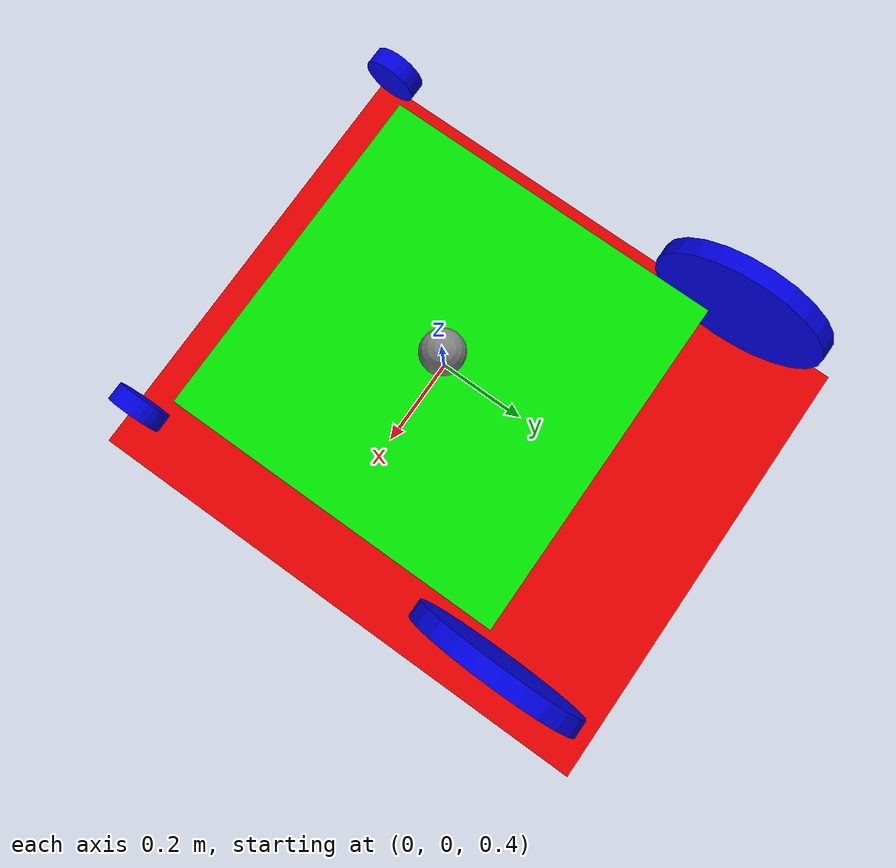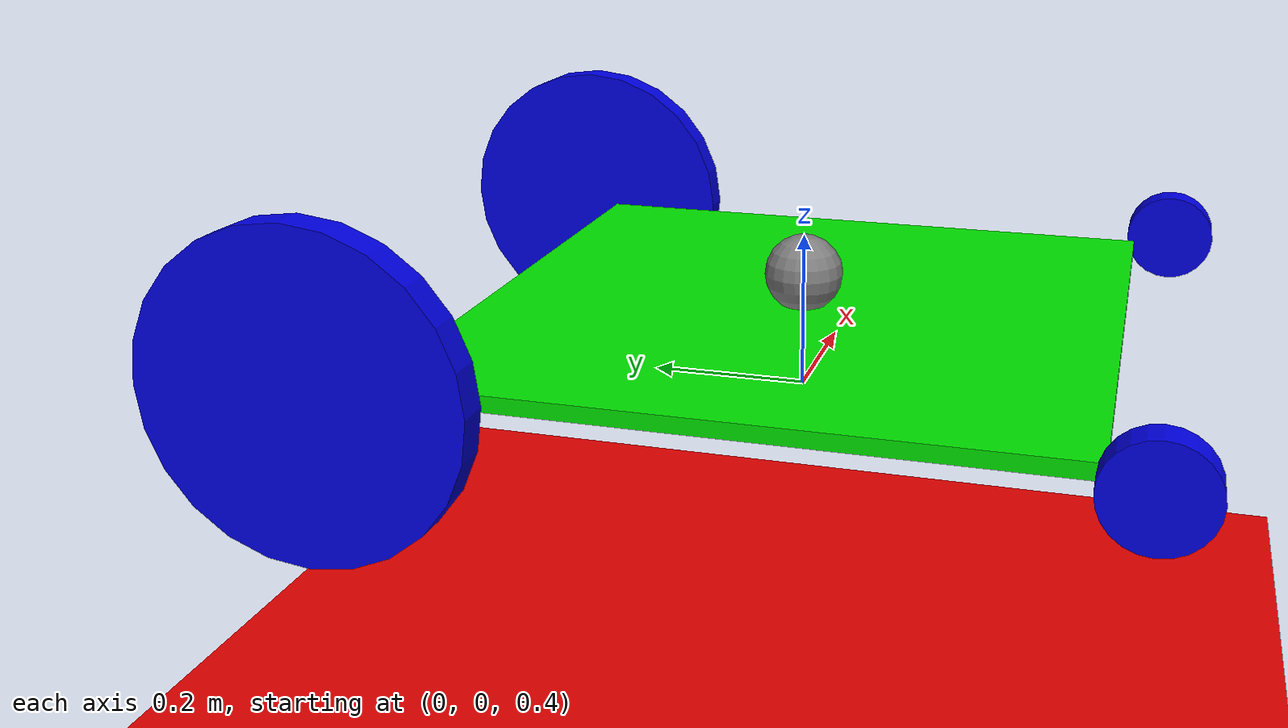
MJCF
<mujoco>
 	<worldbody>
		<light diffuse=".5 .5 .5" pos="0 0 3" dir="0 0 -1"/>
		<geom type="plane" size="2 2 0.1" rgba=".9 0 0 1"/>

		<body name = "main body" pos="0 0 0.5">
 			<joint type="free"/>
 			<geom type="box" size=".4 .4 .01" rgba="0 .9 0 1"/>
            <site name="marker" pos = "0 0 0.05" size="0.05" />
            <site name="robot_center" pos="0 0 0" size="0.01"/>

            <body name = "left front wheel" pos="0.45 .45 .01" euler='0 90 0'>
     			<joint name = "left front" type="hinge" axis = "0 0 -1"/>
     			<geom type="cylinder" size=".2 0.02" rgba="0 0 0.9 1" mass="1" friction="0.005 0.005 0.0001"/>
    		</body>

            <body name = "right front wheel" pos="-0.45 .45 .01" euler='0 90 0'>
     			<joint name = "right front" type="hinge" axis = "0 0 -1"/>
     			<geom type="cylinder" size=".2 0.02" rgba="0 0 0.9 1" mass="1" friction="0.005 0.005 0.0001"/>
    		</body>

            <body name = "left rear wheel" pos="0.45 -.45 .01" euler='0 90 0'>
     			<joint name = "left rear" type="hinge" axis = "-0 0 -1"/>
     			<geom type="cylinder" size=".06 0.02" rgba="0 0 0.9 1" mass="10" friction="0.005 0.005 0.0001"/>
    		</body>

            <body name = "right rear wheel" pos="-0.45 -.45 .01" euler='0 90 0'>
     			<joint name = "right rear" type="hinge" axis = "-0 0 -1"/>
     			<geom type="cylinder" size=".06 0.02" rgba="0 0 0.9 1" mass="10" friction="0.005 0.005 0.0001"/>
    		</body>

        </body>

 	</worldbody>
    <sensor>
		<framepos objtype="site" objname="marker"/>
        <velocimeter name="robot_velocity" site="robot_center"/>
	</sensor>
    <actuator>

        <velocity name="left front motor" joint="left front" kv="10"/>
        <velocity name="right front motor" joint="right front" kv="10"/>
        <motor name="left rear motor" joint="left rear" gear="2"/>
        <motor name="right rear motor" joint="right rear" gear="2"/>

 	</actuator>

</mujoco>
